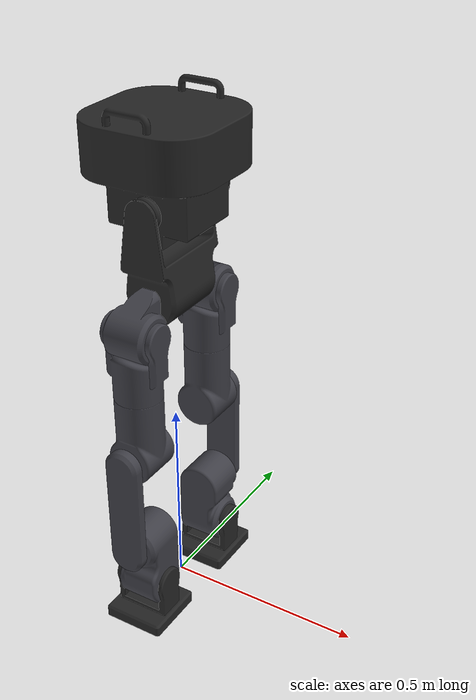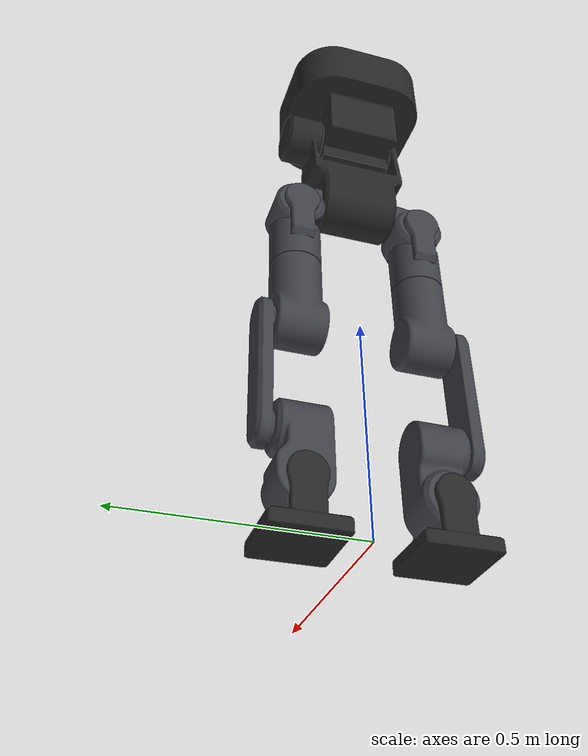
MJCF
<mujoco model="diden_walker">
    <compiler angle="radian" meshdir="meshes" eulerseq="xyz" autolimits="true"/>

    <option timestep="0.001" iterations="50" solver="Newton" tolerance="1e-10"/>

    <default>
        <default class="diden">
            <geom condim="4" contype="1" conaffinity="1" friction="0.5 0.005 0.0001" solimp=".9 .99 .003" solref=".015 1" group="1"/>
            <joint limited="true" damping="0.0" armature="0.0"/>
            <default class="visual">
                <geom group="0" contype="0" conaffinity="0"/>
            </default>
            <default class="collision">
                <geom group="3"/>
            </default>
            <site group="5" rgba="1 0 0 1"/>
        </default>
    </default>

    <asset>
        <mesh name="pelvis_vis" file="Diden_Walker_Simplified_Pelvis_verD1_20260317.stl"/>
        <mesh name="torso_vis" file="Diden_Walker_Simplified_Base_verD1_20260317.stl"/>
        <mesh name="left_hip_pitch_vis" file="Diden_Walker_Simplified_HP2HR_Left_verD1_20260317.stl"/>
        <mesh name="left_hip_roll_vis" file="Diden_Walker_Simplified_HR2HY_Left_verD1_20260317.stl"/>
        <mesh name="left_hip_yaw_vis" file="Diden_Walker_Simplified_HY2K_Left_verD1_20260317.stl"/>
        <mesh name="left_knee_vis" file="Diden_Walker_Simplified_K2AP_Left_verD1_20260317.stl"/>
        <mesh name="left_ankle_pitch_vis" file="Diden_Walker_Simplified_AP2AR_Left_verD1_20260317.stl"/>
        <mesh name="left_ankle_roll_vis" file="Diden_Walker_Simplified_AR2F_Left_verD1_20260317.stl"/>
        <mesh name="right_hip_pitch_vis" file="Diden_Walker_Simplified_HP2HR_Right_verD1_20260317.stl"/>
        <mesh name="right_hip_roll_vis" file="Diden_Walker_Simplified_HR2HY_Right_verD1_20260317.stl"/>
        <mesh name="right_hip_yaw_vis" file="Diden_Walker_Simplified_HY2K_Right_verD1_20260317.stl"/>
        <mesh name="right_knee_vis" file="Diden_Walker_Simplified_K2AP_Right_verD1_20260317.stl"/>
        <mesh name="right_ankle_pitch_vis" file="Diden_Walker_Simplified_AP2AR_Right_verD1_20260317.stl"/>
        <mesh name="right_ankle_roll_vis" file="Diden_Walker_Simplified_AR2F_Right_verD1_20260317.stl"/>

        <material name="metallic" rgba="0.25 0.25 0.28 1.0"
                  specular="0.2" shininess="0.3" reflectance="0.1"/>
        <material name="matte_black" rgba="0.15 0.15 0.15 1.0"
                  specular="0.1" shininess="0.2" reflectance="0.05"/>
        <material name="dark_gray" rgba="0.25 0.25 0.28 1.0"
                  specular="0.2" shininess="0.3" reflectance="0.1"/>
    </asset>

    <worldbody>
        <light pos="0 0 3" dir="0 0 -1" diffuse="0.8 0.8 0.8"/>

        <body name="pelvis" pos="0 0 0.85" childclass="diden">
            <freejoint name="root"/>
            <site name="imu" size="0.01" pos="0 0 0"/>
            <inertial pos="-0.00089 0.03229 0.06915" mass="8.26739"
                      fullinertia="0.12137 0.08211 0.05623 -0.00047 -0.00086 0.03643"/>
            <geom type="mesh" mesh="pelvis_vis" material="matte_black" class="visual"/>
            <geom name="pelvis_collision_1" class="collision" type="cylinder" size="0.068 0.085" quat="0.707107 0.707107 0 0"/>
            <geom name="pelvis_collision_2" class="collision" type="cylinder" size="0.058 0.04" pos="0 0.127 0.205" quat="0.707107 0.707107 0 0"/>

            <body name="left_hip_pitch_link" pos="0 0.088 0">
                <inertial pos="0.00550 0.05030 -0.05367" mass="2.62970"
                          fullinertia="0.00491 0.00371 0.00373 0.00020 -0.00011 -0.00060"/>
                <joint name="left_hip_pitch_joint" type="hinge" axis="0 1 0"
                       range="-1.65806 1.65806" armature="0.000331"/>
                <geom type="mesh" mesh="left_hip_pitch_vis" material="dark_gray" class="visual"/>
                <geom name="left_hip_pitch_collision" class="collision" type="cylinder" size="0.058 0.0535" pos="0 0.05775 -0.06" quat="0.707107 0 -0.707107 0"/>

                <body name="left_hip_roll_link" pos="0 0.05775 -0.06">
                    <inertial pos="0.00203 0.00071 -0.09162" mass="1.55288"
                              fullinertia="0.00522 0.00644 0.00359 0.00002 0.00027 0.00002"/>
                    <joint name="left_hip_roll_joint" type="hinge" axis="1 0 0"
                           range="-0.523599 2.09440" armature="0.000331"/>
                    <geom type="mesh" mesh="left_hip_roll_vis" material="dark_gray" class="visual"/>
                    <geom name="left_hip_roll_collision" class="collision" type="cylinder" size="0.058 0.045" pos="0 0 -0.115"/>

                    <body name="left_hip_yaw_link" pos="0 0 -0.16">
                        <inertial pos="0.00305 0.00355 -0.10302" mass="5.00840"
                                  fullinertia="0.02118 0.02263 0.00747 -0.00014 -0.00014 -0.00098"/>
                        <joint name="left_hip_yaw_joint" type="hinge" axis="0 0 1"
                               range="-1.57080 1.57080" armature="0.000331"/>
                        <geom type="mesh" mesh="left_hip_yaw_vis" material="dark_gray" class="visual"/>
                        <geom name="left_hip_yaw_collision_1" class="collision" type="cylinder" size="0.058 0.049" pos="0 0 -0.049"/>
                        <geom name="left_hip_yaw_collision_2" class="collision" type="cylinder" size="0.058 0.058" pos="0 0 -0.16" quat="0.707107 0.707107 0 0"/>

                        <body name="left_knee_link" pos="0 0 -0.16">
                            <inertial pos="0.0 0.07008 -0.13" mass="1.00185"
                                      fullinertia="0.01152 0.01231 0.00095 0.0 0.0 0.0"/>
                            <joint name="left_knee_joint" type="hinge" axis="0 1 0"
                                   range="-2.61799 2.61799" armature="0.000331"/>
                            <geom type="mesh" mesh="left_knee_vis" material="metallic" class="visual"/>
                            <geom name="left_knee_collision_1" class="collision" type="cylinder" size="0.045 0.015" pos="0 0.075 0" quat="0.707107 0.707107 0 0"/>
                            <geom name="left_knee_collision_2" class="collision" type="box" size="0.045 0.015 0.08" pos="0 0.075 -0.13"/>
                            <geom name="left_knee_collision_3" class="collision" type="cylinder" size="0.045 0.015" pos="0 0.075 -0.26" quat="0.707107 0.707107 0 0"/>

                            <body name="left_ankle_pitch_link" pos="0 0 -0.26">
                                <inertial pos="0.00435 0.00177 -0.06111" mass="5.23490"
                                          fullinertia="0.02424 0.02423 0.00755 -0.00003 -0.00060 0.00166"/>
                                <joint name="left_ankle_pitch_joint" type="hinge" axis="0 1 0"
                                       range="-2.53073 2.53073" armature="0.000331"/>
                                <geom type="mesh" mesh="left_ankle_pitch_vis" material="dark_gray" class="visual"/>
                                <geom name="left_ankle_pitch_collision_1" class="collision" type="cylinder" size="0.058 0.058" quat="0.707107 0.707107 0 0"/>
                                <geom name="left_ankle_pitch_collision_2" class="collision" type="cylinder" size="0.058 0.058" pos="0 0 -0.12" quat="0.707107 0 0.707107 0"/>

                                <body name="left_ankle_roll_link" pos="0 0 -0.12">
                                    <inertial pos="-0.00327 0.0 -0.06529" mass="0.97436"
                                              fullinertia="0.00304 0.00430 0.00347 0.0 -0.00018 0.0"/>
                                    <joint name="left_ankle_roll_joint" type="hinge" axis="1 0 0"
                                           range="-1.65806 1.65806" armature="0.000331"/>
                                    <geom type="mesh" mesh="left_ankle_roll_vis" material="matte_black" class="visual"/>
                                    <site name="left_foot" pos="0 0 -0.0995"/>
                                    <geom name="left_foot1_collision" class="collision" type="box" size="0.0775 0.0775 0.0155" pos="0 0 -0.0995"/>
                                </body>
                            </body>
                        </body>
                    </body>
                </body>
            </body>

            <body name="right_hip_pitch_link" pos="0 -0.088 0">
                <inertial pos="-0.00550 -0.05030 -0.05367" mass="2.62970"
                          fullinertia="0.00491 0.00371 0.00373 0.00020 0.00011 0.00060"/>
                <joint name="right_hip_pitch_joint" type="hinge" axis="0 1 0"
                       range="-1.65806 1.65806" armature="0.000331"/>
                <geom type="mesh" mesh="right_hip_pitch_vis" material="dark_gray" class="visual"/>
                <geom name="right_hip_pitch_collision" class="collision" type="cylinder" size="0.058 0.0535" pos="0 -0.05775 -0.06" quat="0.707107 0 -0.707107 0"/>

                <body name="right_hip_roll_link" pos="0 -0.05775 -0.06">
                    <inertial pos="-0.00203 -0.00071 -0.09162" mass="1.55288"
                              fullinertia="0.00522 0.00644 0.00359 -0.00002 -0.00027 -0.00002"/>
                    <joint name="right_hip_roll_joint" type="hinge" axis="1 0 0"
                           range="-2.09440 0.523599" armature="0.000331"/>
                    <geom type="mesh" mesh="right_hip_roll_vis" material="dark_gray" class="visual"/>
                    <geom name="right_hip_roll_collision" class="collision" type="cylinder" size="0.058 0.045" pos="0 0 -0.115"/>

                    <body name="right_hip_yaw_link" pos="0 0 -0.16">
                        <inertial pos="-0.00305 -0.00355 -0.10302" mass="5.00840"
                                  fullinertia="0.02118 0.02263 0.00747 -0.00014 0.00014 0.00098"/>
                        <joint name="right_hip_yaw_joint" type="hinge" axis="0 0 1"
                               range="-1.57080 1.57080" armature="0.000331"/>
                        <geom type="mesh" mesh="right_hip_yaw_vis" material="dark_gray" class="visual"/>
                        <geom name="right_hip_yaw_collision_1" class="collision" type="cylinder" size="0.058 0.049" pos="0 0 -0.049"/>
                        <geom name="right_hip_yaw_collision_2" class="collision" type="cylinder" size="0.058 0.058" pos="0 0 -0.16" quat="0.707107 0.707107 0 0"/>

                        <body name="right_knee_link" pos="0 0 -0.16">
                            <inertial pos="0.0 -0.07008 -0.13" mass="1.00185"
                                      fullinertia="0.01152 0.01231 0.00095 0.0 0.0 0.0"/>
                            <joint name="right_knee_joint" type="hinge" axis="0 1 0"
                                   range="-2.61799 2.61799" armature="0.000331"/>
                            <geom type="mesh" mesh="right_knee_vis" material="metallic" class="visual"/>
                            <geom name="right_knee_collision_1" class="collision" type="cylinder" size="0.045 0.015" pos="0 -0.075 0" quat="0.707107 0.707107 0 0"/>
                            <geom name="right_knee_collision_2" class="collision" type="box" size="0.045 0.015 0.08" pos="0 -0.075 -0.13"/>
                            <geom name="right_knee_collision_3" class="collision" type="cylinder" size="0.045 0.015" pos="0 -0.075 -0.26" quat="0.707107 0.707107 0 0"/>

                            <body name="right_ankle_pitch_link" pos="0 0 -0.26">
                                <inertial pos="-0.00435 -0.00177 -0.06111" mass="5.23490"
                                          fullinertia="0.02424 0.02423 0.00755 -0.00003 0.00060 -0.00166"/>
                                <joint name="right_ankle_pitch_joint" type="hinge" axis="0 1 0"
                                       range="-2.53073 2.53073" armature="0.000331"/>
                                <geom type="mesh" mesh="right_ankle_pitch_vis" material="dark_gray" class="visual"/>
                                <geom name="right_ankle_pitch_collision_1" class="collision" type="cylinder" size="0.058 0.058" quat="0.707107 0.707107 0 0"/>
                                <geom name="right_ankle_pitch_collision_2" class="collision" type="cylinder" size="0.058 0.058" pos="0 0 -0.12" quat="0.707107 0 0.707107 0"/>

                                <body name="right_ankle_roll_link" pos="0 0 -0.12">
                                    <inertial pos="0.00327 0.0 -0.06529" mass="0.97436"
                                              fullinertia="0.00304 0.00430 0.00347 0.0 0.00018 0.0"/>
                                    <joint name="right_ankle_roll_joint" type="hinge" axis="1 0 0"
                                           range="-1.65806 1.65806" armature="0.000331"/>
                                    <geom type="mesh" mesh="right_ankle_roll_vis" material="matte_black" class="visual"/>
                                    <site name="right_foot" pos="0 0 -0.0995"/>
                                    <geom name="right_foot1_collision" class="collision" type="box" size="0.0775 0.0775 0.0155" pos="0 0 -0.0995"/>
                                </body>
                            </body>
                        </body>
                    </body>
                </body>
            </body>

            <body name="torso_link" pos="0 0 0.205">
                <inertial pos="-0.00009 -0.00012 0.07087" mass="10.13087"
                          fullinertia="0.14077 0.13863 0.13713 0.00023 -0.00088 0.00071"/>
                <joint name="waist_pitch_joint" type="hinge" axis="0 1 0"
                       range="-1.57080 1.57080" armature="0.000331"/>
                <geom type="mesh" mesh="torso_vis" material="matte_black" class="visual"/>
                <geom name="torso_collision" class="collision" type="mesh" mesh="torso_vis"/>
            </body>
        </body>
    </worldbody>

    <sensor>
        <gyro name="imu_ang_vel" site="imu"/>
        <velocimeter name="imu_lin_vel" site="imu"/>
        <accelerometer name="imu_lin_acc" site="imu"/>
        <subtreeangmom name="root_angmom" body="pelvis"/>
    </sensor>
</mujoco>
